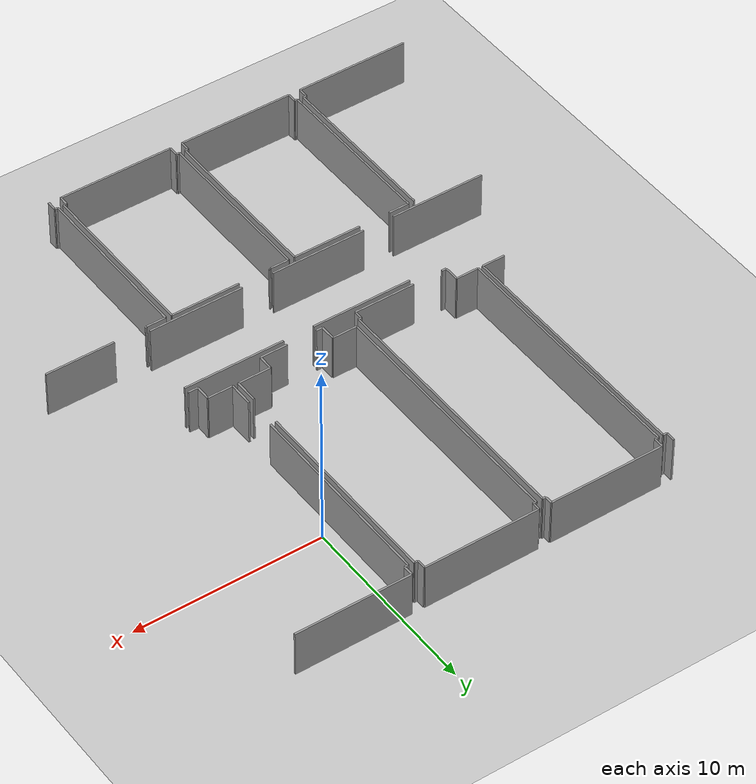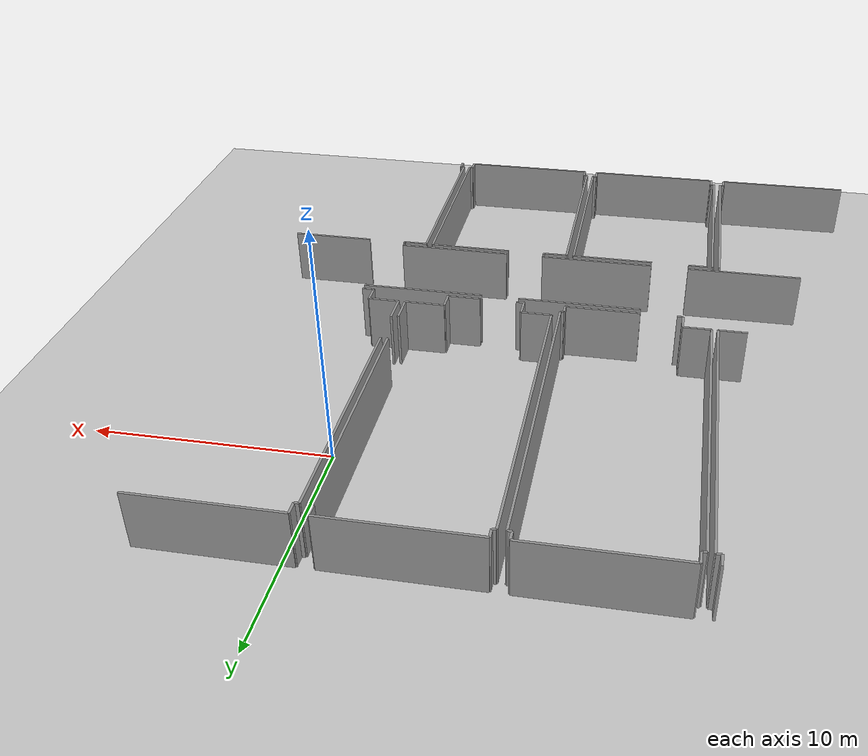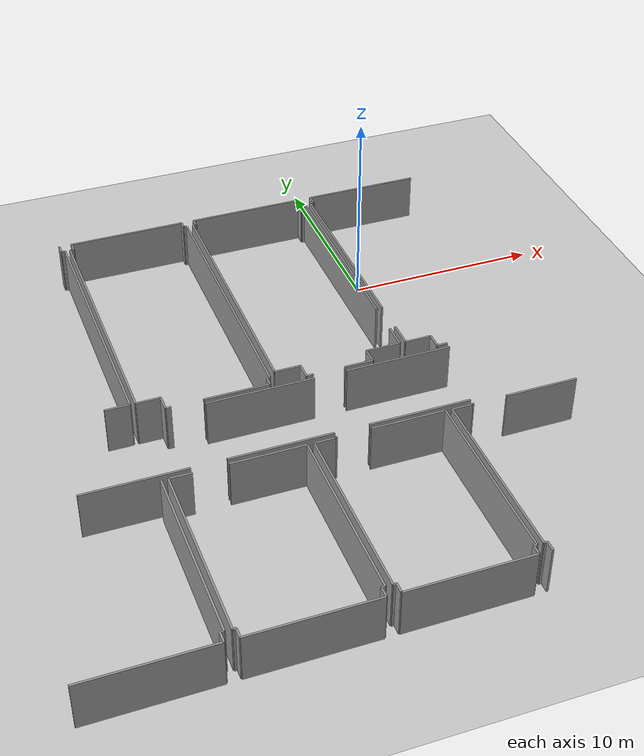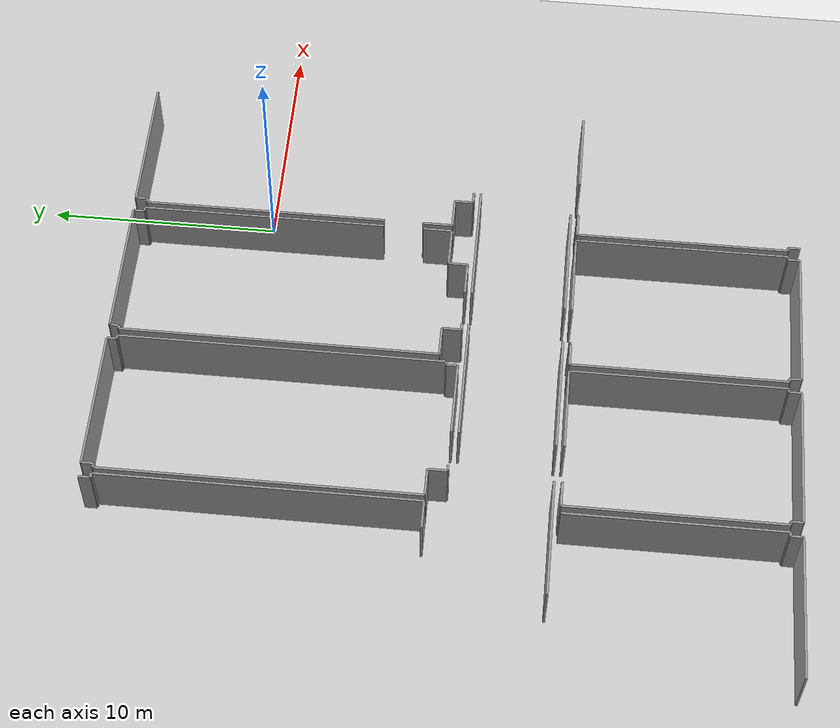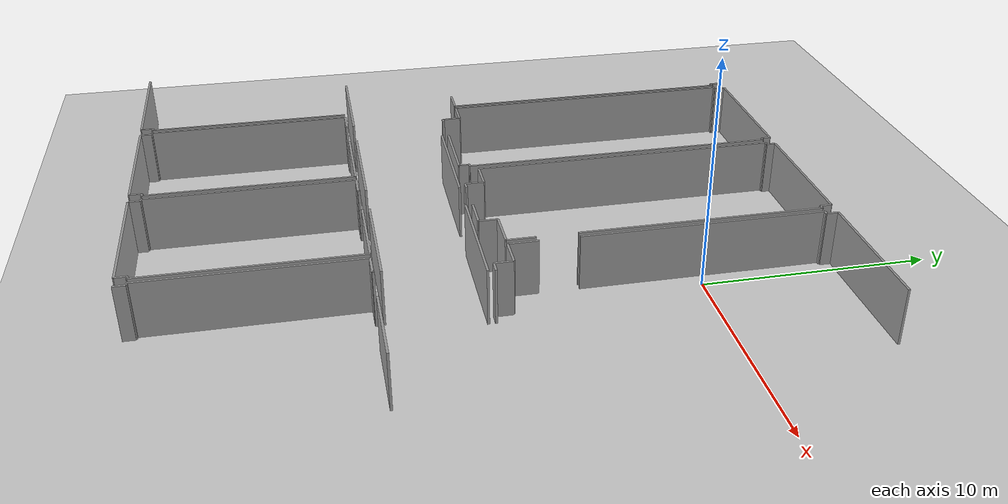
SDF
<sdf version="1.6">
 <world name="default">
  <model name="ground_plane">
   <static>1</static>
   <link name="link">
    <collision name="collision">
     <geometry><plane><normal>0 0 1</normal><size>100 100</size></plane></geometry>
     <surface><friction><ode><mu>100</mu><mu2>50</mu2></ode></friction></surface>
    </collision>
    <visual name="visual">
     <cast_shadows>0</cast_shadows>
     <geometry><plane><normal>0 0 1</normal><size>100 100</size></plane></geometry>
     <material>
      <script><uri>file://media/materials/scripts/gazebo.material</uri><name>Gazebo/Grey</name></script>
     </material>
    </visual>
   </link>
  </model>
  <model name="0510032192_A_40_1_203">
   <static>1</static>
   <link name="Wall_46">
    <collision name="Wall_46_Collision">
     <geometry><box><size>9.18871173753 0.1 2.5</size></box></geometry>
     <pose>4.59435586877 0 1.25 0 0 0</pose>
    </collision>
    <visual name="Wall_46_Visual">
     <pose>4.59435586877 0 1.25 0 0 0</pose>
     <geometry><box><size>9.18871173753 0.1 2.5</size></box></geometry>
     <material>
      <script><uri>file://media/materials/scripts/gazebo.material</uri><name>Gazebo/Grey</name></script>
      <ambient>1 1 1 1</ambient>
     </material>
    </visual>
    <pose>49.8577211232 -36.9945032948 0 0 0 -1.57079632679</pose>
   </link>
   <link name="Wall_47">
    <collision name="Wall_47_Collision">
     <geometry><box><size>0.176402930729 0.1 2.5</size></box></geometry>
     <pose>0.0882014653644 0 1.25 0 0 0</pose>
    </collision>
    <visual name="Wall_47_Visual">
     <pose>0.0882014653644 0 1.25 0 0 0</pose>
     <geometry><box><size>0.176402930729 0.1 2.5</size></box></geometry>
     <material>
      <script><uri>file://media/materials/scripts/gazebo.material</uri><name>Gazebo/Grey</name></script>
      <ambient>1 1 1 1</ambient>
     </material>
    </visual>
    <pose>49.8577211232 -46.1832150324 0 0 0 3.14159265359</pose>
   </link>
   <link name="Wall_48">
    <collision name="Wall_48_Collision">
     <geometry><box><size>0.531115163916 0.1 2.5</size></box></geometry>
     <pose>0.265557581958 0 1.25 0 0 0</pose>
    </collision>
    <visual name="Wall_48_Visual">
     <pose>0.265557581958 0 1.25 0 0 0</pose>
     <geometry><box><size>0.531115163916 0.1 2.5</size></box></geometry>
     <material>
      <script><uri>file://media/materials/scripts/gazebo.material</uri><name>Gazebo/Grey</name></script>
      <ambient>1 1 1 1</ambient>
     </material>
    </visual>
    <pose>49.6813181925 -46.1832150324 0 0 0 -1.57079632679</pose>
   </link>
   <link name="Wall_49">
    <collision name="Wall_49_Collision">
     <geometry><box><size>6.15875808017 0.1 2.5</size></box></geometry>
     <pose>3.07937904008 0 1.25 0 0 0</pose>
    </collision>
    <visual name="Wall_49_Visual">
     <pose>3.07937904008 0 1.25 0 0 0</pose>
     <geometry><box><size>6.15875808017 0.1 2.5</size></box></geometry>
     <material>
      <script><uri>file://media/materials/scripts/gazebo.material</uri><name>Gazebo/Grey</name></script>
      <ambient>1 1 1 1</ambient>
     </material>
    </visual>
    <pose>49.6813181925 -46.7143301963 0 0 0 -3.13829090534</pose>
   </link>
   <link name="Wall_50">
    <collision name="Wall_50_Collision">
     <geometry><box><size>0.511288897926 0.1 2.5</size></box></geometry>
     <pose>0.255644448963 0 1.25 0 0 0</pose>
    </collision>
    <visual name="Wall_50_Visual">
     <pose>0.255644448963 0 1.25 0 0 0</pose>
     <geometry><box><size>0.511288897926 0.1 2.5</size></box></geometry>
     <material>
      <script><uri>file://media/materials/scripts/gazebo.material</uri><name>Gazebo/Grey</name></script>
      <ambient>1 1 1 1</ambient>
     </material>
    </visual>
    <pose>50.338380982 -46.7143301963 0 0 0 1.57079632679</pose>
   </link>
   <link name="Wall_51">
    <collision name="Wall_51_Collision">
     <geometry><box><size>0.152891012728 0.1 2.5</size></box></geometry>
     <pose>0.0764455063641 0 1.25 0 0 0</pose>
    </collision>
    <visual name="Wall_51_Visual">
     <pose>0.0764455063641 0 1.25 0 0 0</pose>
     <geometry><box><size>0.152891012728 0.1 2.5</size></box></geometry>
     <material>
      <script><uri>file://media/materials/scripts/gazebo.material</uri><name>Gazebo/Grey</name></script>
      <ambient>1 1 1 1</ambient>
     </material>
    </visual>
    <pose>50.338380982 -46.2030412984 0 0 0 3.14159265359</pose>
   </link>
   <link name="Wall_52">
    <collision name="Wall_52_Collision">
     <geometry><box><size>9.20739418048 0.1 2.5</size></box></geometry>
     <pose>4.60369709024 0 1.25 0 0 0</pose>
    </collision>
    <visual name="Wall_52_Visual">
     <pose>4.60369709024 0 1.25 0 0 0</pose>
     <geometry><box><size>9.20739418048 0.1 2.5</size></box></geometry>
     <material>
      <script><uri>file://media/materials/scripts/gazebo.material</uri><name>Gazebo/Grey</name></script>
      <ambient>1 1 1 1</ambient>
     </material>
    </visual>
    <pose>50.1854899693 -46.2030412984 0 0 0 1.57079632679</pose>
   </link>
   <link name="Wall_53">
    <collision name="Wall_53_Collision">
     <geometry><box><size>1.10467887168 0.1 2.5</size></box></geometry>
     <pose>0.552339435841 0 1.25 0 0 0</pose>
    </collision>
    <visual name="Wall_53_Visual">
     <pose>0.552339435841 0 1.25 0 0 0</pose>
     <geometry><box><size>1.10467887168 0.1 2.5</size></box></geometry>
     <material>
      <script><uri>file://media/materials/scripts/gazebo.material</uri><name>Gazebo/Grey</name></script>
      <ambient>1 1 1 1</ambient>
     </material>
    </visual>
    <pose>50.1854899693 -36.9956471179 0 0 0 0.0</pose>
   </link>
   <link name="Wall_54">
    <collision name="Wall_54_Collision">
     <geometry><box><size>3.69010021161 0.1 2.5</size></box></geometry>
     <pose>1.8450501058 0 1.25 0 0 0</pose>
    </collision>
    <visual name="Wall_54_Visual">
     <pose>1.8450501058 0 1.25 0 0 0</pose>
     <geometry><box><size>3.69010021161 0.1 2.5</size></box></geometry>
     <material>
      <script><uri>file://media/materials/scripts/gazebo.material</uri><name>Gazebo/Grey</name></script>
      <ambient>1 1 1 1</ambient>
     </material>
    </visual>
    <pose>52.9898898753 -36.9956471179 0 0 0 0.0</pose>
   </link>
   <link name="Wall_55">
    <collision name="Wall_55_Collision">
     <geometry><box><size>9.18248425655 0.1 2.5</size></box></geometry>
     <pose>4.59124212827 0 1.25 0 0 0</pose>
    </collision>
    <visual name="Wall_55_Visual">
     <pose>4.59124212827 0 1.25 0 0 0</pose>
     <geometry><box><size>9.18248425655 0.1 2.5</size></box></geometry>
     <material>
      <script><uri>file://media/materials/scripts/gazebo.material</uri><name>Gazebo/Grey</name></script>
      <ambient>1 1 1 1</ambient>
     </material>
    </visual>
    <pose>56.6799900869 -36.9956471179 0 0 0 -1.57079632679</pose>
   </link>
   <link name="Wall_56">
    <collision name="Wall_56_Collision">
     <geometry><box><size>0.16966708395 0.1 2.5</size></box></geometry>
     <pose>0.0848335419751 0 1.25 0 0 0</pose>
    </collision>
    <visual name="Wall_56_Visual">
     <pose>0.0848335419751 0 1.25 0 0 0</pose>
     <geometry><box><size>0.16966708395 0.1 2.5</size></box></geometry>
     <material>
      <script><uri>file://media/materials/scripts/gazebo.material</uri><name>Gazebo/Grey</name></script>
      <ambient>1 1 1 1</ambient>
     </material>
    </visual>
    <pose>56.6799900869 -46.1781313744 0 0 0 3.14159265359</pose>
   </link>
   <link name="Wall_57">
    <collision name="Wall_57_Collision">
     <geometry><box><size>0.538232285041 0.1 2.5</size></box></geometry>
     <pose>0.26911614252 0 1.25 0 0 0</pose>
    </collision>
    <visual name="Wall_57_Visual">
     <pose>0.26911614252 0 1.25 0 0 0</pose>
     <geometry><box><size>0.538232285041 0.1 2.5</size></box></geometry>
     <material>
      <script><uri>file://media/materials/scripts/gazebo.material</uri><name>Gazebo/Grey</name></script>
      <ambient>1 1 1 1</ambient>
     </material>
    </visual>
    <pose>56.5103230029 -46.1781313744 0 0 0 -1.57079632679</pose>
   </link>
   <link name="Wall_58">
    <collision name="Wall_58_Collision">
     <geometry><box><size>6.17194235586 0.1 2.5</size></box></geometry>
     <pose>3.08597117793 0 1.25 0 0 0</pose>
    </collision>
    <visual name="Wall_58_Visual">
     <pose>3.08597117793 0 1.25 0 0 0</pose>
     <geometry><box><size>6.17194235586 0.1 2.5</size></box></geometry>
     <material>
      <script><uri>file://media/materials/scripts/gazebo.material</uri><name>Gazebo/Grey</name></script>
      <ambient>1 1 1 1</ambient>
     </material>
    </visual>
    <pose>56.5103230029 -46.7163636595 0 0 0 3.14126318466</pose>
   </link>
   <link name="Wall_59">
    <collision name="Wall_59_Collision">
     <geometry><box><size>0.515864190078 0.1 2.5</size></box></geometry>
     <pose>0.257932095039 0 1.25 0 0 0</pose>
    </collision>
    <visual name="Wall_59_Visual">
     <pose>0.257932095039 0 1.25 0 0 0</pose>
     <geometry><box><size>0.515864190078 0.1 2.5</size></box></geometry>
     <material>
      <script><uri>file://media/materials/scripts/gazebo.material</uri><name>Gazebo/Grey</name></script>
      <ambient>1 1 1 1</ambient>
     </material>
    </visual>
    <pose>57.1687837984 -46.7147114706 0 0 0 1.57079632679</pose>
   </link>
   <link name="Wall_60">
    <collision name="Wall_60_Collision">
     <geometry><box><size>0.159881042404 0.1 2.5</size></box></geometry>
     <pose>0.079940521202 0 1.25 0 0 0</pose>
    </collision>
    <visual name="Wall_60_Visual">
     <pose>0.079940521202 0 1.25 0 0 0</pose>
     <geometry><box><size>0.159881042404 0.1 2.5</size></box></geometry>
     <material>
      <script><uri>file://media/materials/scripts/gazebo.material</uri><name>Gazebo/Grey</name></script>
      <ambient>1 1 1 1</ambient>
     </material>
    </visual>
    <pose>57.1687837984 -46.1988472806 0 0 0 3.14159265359</pose>
   </link>
   <link name="Wall_61">
    <collision name="Wall_61_Collision">
     <geometry><box><size>9.19938741922 0.1 2.5</size></box></geometry>
     <pose>4.59969370961 0 1.25 0 0 0</pose>
    </collision>
    <visual name="Wall_61_Visual">
     <pose>4.59969370961 0 1.25 0 0 0</pose>
     <geometry><box><size>9.19938741922 0.1 2.5</size></box></geometry>
     <material>
      <script><uri>file://media/materials/scripts/gazebo.material</uri><name>Gazebo/Grey</name></script>
      <ambient>1 1 1 1</ambient>
     </material>
    </visual>
    <pose>57.008902756 -46.1988472806 0 0 0 1.57079632679</pose>
   </link>
   <link name="Wall_62">
    <collision name="Wall_62_Collision">
     <geometry><box><size>1.0318554716 0.1 2.5</size></box></geometry>
     <pose>0.515927735802 0 1.25 0 0 0</pose>
    </collision>
    <visual name="Wall_62_Visual">
     <pose>0.515927735802 0 1.25 0 0 0</pose>
     <geometry><box><size>1.0318554716 0.1 2.5</size></box></geometry>
     <material>
      <script><uri>file://media/materials/scripts/gazebo.material</uri><name>Gazebo/Grey</name></script>
      <ambient>1 1 1 1</ambient>
     </material>
    </visual>
    <pose>57.008902756 -36.9994598613 0 0 0 0.0</pose>
   </link>
   <link name="Wall_63">
    <collision name="Wall_63_Collision">
     <geometry><box><size>0.0363481543144 0.1 2.5</size></box></geometry>
     <pose>0.0181740771572 0 1.25 0 0 0</pose>
    </collision>
    <visual name="Wall_63_Visual">
     <pose>0.0181740771572 0 1.25 0 0 0</pose>
     <geometry><box><size>0.0363481543144 0.1 2.5</size></box></geometry>
     <material>
      <script><uri>file://media/materials/scripts/gazebo.material</uri><name>Gazebo/Grey</name></script>
      <ambient>1 1 1 1</ambient>
     </material>
    </visual>
    <pose>58.0407582276 -36.9994598613 0 0 0 1.57079632679</pose>
   </link>
   <link name="Wall_64">
    <collision name="Wall_64_Collision">
     <geometry><box><size>0.0944289463484 0.1 2.5</size></box></geometry>
     <pose>0.0472144731742 0 1.25 0 0 0</pose>
    </collision>
    <visual name="Wall_64_Visual">
     <pose>0.0472144731742 0 1.25 0 0 0</pose>
     <geometry><box><size>0.0944289463484 0.1 2.5</size></box></geometry>
     <material>
      <script><uri>file://media/materials/scripts/gazebo.material</uri><name>Gazebo/Grey</name></script>
      <ambient>1 1 1 1</ambient>
     </material>
    </visual>
    <pose>58.0407582276 -36.963111707 0 0 0 0.0</pose>
   </link>
   <link name="Wall_65">
    <collision name="Wall_65_Collision">
     <geometry><box><size>3.71755196452 0.1 2.5</size></box></geometry>
     <pose>1.85877598226 0 1.25 0 0 0</pose>
    </collision>
    <visual name="Wall_65_Visual">
     <pose>1.85877598226 0 1.25 0 0 0</pose>
     <geometry><box><size>3.71755196452 0.1 2.5</size></box></geometry>
     <material>
      <script><uri>file://media/materials/scripts/gazebo.material</uri><name>Gazebo/Grey</name></script>
      <ambient>1 1 1 1</ambient>
     </material>
    </visual>
    <pose>59.7970349565 -36.963111707 0 0 0 0.0</pose>
   </link>
   <link name="Wall_66">
    <collision name="Wall_66_Collision">
     <geometry><box><size>9.23675230512 0.1 2.5</size></box></geometry>
     <pose>4.61837615256 0 1.25 0 0 0</pose>
    </collision>
    <visual name="Wall_66_Visual">
     <pose>4.61837615256 0 1.25 0 0 0</pose>
     <geometry><box><size>9.23675230512 0.1 2.5</size></box></geometry>
     <material>
      <script><uri>file://media/materials/scripts/gazebo.material</uri><name>Gazebo/Grey</name></script>
      <ambient>1 1 1 1</ambient>
     </material>
    </visual>
    <pose>63.514586921 -36.963111707 0 0 0 -1.57079632679</pose>
   </link>
   <link name="Wall_67">
    <collision name="Wall_67_Collision">
     <geometry><box><size>0.162041597031 0.1 2.5</size></box></geometry>
     <pose>0.0810207985156 0 1.25 0 0 0</pose>
    </collision>
    <visual name="Wall_67_Visual">
     <pose>0.0810207985156 0 1.25 0 0 0</pose>
     <geometry><box><size>0.162041597031 0.1 2.5</size></box></geometry>
     <material>
      <script><uri>file://media/materials/scripts/gazebo.material</uri><name>Gazebo/Grey</name></script>
      <ambient>1 1 1 1</ambient>
     </material>
    </visual>
    <pose>63.514586921 -46.1998640121 0 0 0 3.14159265359</pose>
   </link>
   <link name="Wall_68">
    <collision name="Wall_68_Collision">
     <geometry><box><size>0.509763800543 0.1 2.5</size></box></geometry>
     <pose>0.254881900271 0 1.25 0 0 0</pose>
    </collision>
    <visual name="Wall_68_Visual">
     <pose>0.254881900271 0 1.25 0 0 0</pose>
     <geometry><box><size>0.509763800543 0.1 2.5</size></box></geometry>
     <material>
      <script><uri>file://media/materials/scripts/gazebo.material</uri><name>Gazebo/Grey</name></script>
      <ambient>1 1 1 1</ambient>
     </material>
    </visual>
    <pose>63.352545324 -46.1998640121 0 0 0 -1.57079632679</pose>
   </link>
   <link name="Wall_69">
    <collision name="Wall_69_Collision">
     <geometry><box><size>6.18376361524 0.1 2.5</size></box></geometry>
     <pose>3.09188180762 0 1.25 0 0 0</pose>
    </collision>
    <visual name="Wall_69_Visual">
     <pose>3.09188180762 0 1.25 0 0 0</pose>
     <geometry><box><size>6.18376361524 0.1 2.5</size></box></geometry>
     <material>
      <script><uri>file://media/materials/scripts/gazebo.material</uri><name>Gazebo/Grey</name></script>
      <ambient>1 1 1 1</ambient>
     </material>
    </visual>
    <pose>63.352545324 -46.7096278127 0 0 0 -3.14077055578</pose>
   </link>
   <link name="Wall_70">
    <collision name="Wall_70_Collision">
     <geometry><box><size>0.530352615224 0.1 2.5</size></box></geometry>
     <pose>0.265176307612 0 1.25 0 0 0</pose>
    </collision>
    <visual name="Wall_70_Visual">
     <pose>0.265176307612 0 1.25 0 0 0</pose>
     <geometry><box><size>0.530352615224 0.1 2.5</size></box></geometry>
     <material>
      <script><uri>file://media/materials/scripts/gazebo.material</uri><name>Gazebo/Grey</name></script>
      <ambient>1 1 1 1</ambient>
     </material>
    </visual>
    <pose>63.9934674995 -46.72869153 0 0 0 1.57079632679</pose>
   </link>
   <link name="Wall_71">
    <collision name="Wall_71_Collision">
     <geometry><box><size>0.162422871377 0.1 2.5</size></box></geometry>
     <pose>0.0812114356886 0 1.25 0 0 0</pose>
    </collision>
    <visual name="Wall_71_Visual">
     <pose>0.0812114356886 0 1.25 0 0 0</pose>
     <geometry><box><size>0.162422871377 0.1 2.5</size></box></geometry>
     <material>
      <script><uri>file://media/materials/scripts/gazebo.material</uri><name>Gazebo/Grey</name></script>
      <ambient>1 1 1 1</ambient>
     </material>
    </visual>
    <pose>63.9934674995 -46.1983389148 0 0 0 3.14159265359</pose>
   </link>
   <link name="Wall_72">
    <collision name="Wall_72_Collision">
     <geometry><box><size>9.20256470543 0.1 2.5</size></box></geometry>
     <pose>4.60128235272 0 1.25 0 0 0</pose>
    </collision>
    <visual name="Wall_72_Visual">
     <pose>4.60128235272 0 1.25 0 0 0</pose>
     <geometry><box><size>9.20256470543 0.1 2.5</size></box></geometry>
     <material>
      <script><uri>file://media/materials/scripts/gazebo.material</uri><name>Gazebo/Grey</name></script>
      <ambient>1 1 1 1</ambient>
     </material>
    </visual>
    <pose>63.8310446282 -46.1983389148 0 0 0 1.57079632679</pose>
   </link>
   <link name="Wall_73">
    <collision name="Wall_73_Collision">
     <geometry><box><size>1.04418334212 0.1 2.5</size></box></geometry>
     <pose>0.522091671062 0 1.25 0 0 0</pose>
    </collision>
    <visual name="Wall_73_Visual">
     <pose>0.522091671062 0 1.25 0 0 0</pose>
     <geometry><box><size>1.04418334212 0.1 2.5</size></box></geometry>
     <material>
      <script><uri>file://media/materials/scripts/gazebo.material</uri><name>Gazebo/Grey</name></script>
      <ambient>1 1 1 1</ambient>
     </material>
    </visual>
    <pose>63.8310446282 -36.9957742093 0 0 0 0.0</pose>
   </link>
   <link name="Wall_74">
    <collision name="Wall_74_Collision">
     <geometry><box><size>0.0249099239358 0.1 2.5</size></box></geometry>
     <pose>0.0124549619679 0 1.25 0 0 0</pose>
    </collision>
    <visual name="Wall_74_Visual">
     <pose>0.0124549619679 0 1.25 0 0 0</pose>
     <geometry><box><size>0.0249099239358 0.1 2.5</size></box></geometry>
     <material>
      <script><uri>file://media/materials/scripts/gazebo.material</uri><name>Gazebo/Grey</name></script>
      <ambient>1 1 1 1</ambient>
     </material>
    </visual>
    <pose>64.8752279703 -36.9957742093 0 0 0 1.57079632679</pose>
   </link>
   <link name="Wall_75">
    <collision name="Wall_75_Collision">
     <geometry><box><size>0.074856863256 0.1 2.5</size></box></geometry>
     <pose>0.037428431628 0 1.25 0 0 0</pose>
    </collision>
    <visual name="Wall_75_Visual">
     <pose>0.037428431628 0 1.25 0 0 0</pose>
     <geometry><box><size>0.074856863256 0.1 2.5</size></box></geometry>
     <material>
      <script><uri>file://media/materials/scripts/gazebo.material</uri><name>Gazebo/Grey</name></script>
      <ambient>1 1 1 1</ambient>
     </material>
    </visual>
    <pose>64.8752279703 -36.9708642854 0 0 0 0.0</pose>
   </link>
   <link name="Wall_76">
    <collision name="Wall_76_Collision">
     <geometry><box><size>3.68933766292 0.1 2.5</size></box></geometry>
     <pose>1.84466883146 0 1.25 0 0 0</pose>
    </collision>
    <visual name="Wall_76_Visual">
     <pose>1.84466883146 0 1.25 0 0 0</pose>
     <geometry><box><size>3.68933766292 0.1 2.5</size></box></geometry>
     <material>
      <script><uri>file://media/materials/scripts/gazebo.material</uri><name>Gazebo/Grey</name></script>
      <ambient>1 1 1 1</ambient>
     </material>
    </visual>
    <pose>66.6326485222 -36.9708642854 0 0 0 0.0</pose>
   </link>
   <link name="Wall_224">
    <collision name="Wall_224_Collision">
     <geometry><box><size>5.41498535271 0.1 2.5</size></box></geometry>
     <pose>2.70749267636 0 1.25 0 0 0</pose>
    </collision>
    <visual name="Wall_224_Visual">
     <pose>2.70749267636 0 1.25 0 0 0</pose>
     <geometry><box><size>5.41498535271 0.1 2.5</size></box></geometry>
     <material>
      <script><uri>file://media/materials/scripts/gazebo.material</uri><name>Gazebo/Grey</name></script>
      <ambient>1 1 1 1</ambient>
     </material>
    </visual>
    <pose>53.2245006895 -32.6294203994 0 0 0 0.0</pose>
   </link>
   <link name="Wall_225">
    <collision name="Wall_225_Collision">
     <geometry><box><size>5.39935310453 0.1 2.5</size></box></geometry>
     <pose>2.69967655226 0 1.25 0 0 0</pose>
    </collision>
    <visual name="Wall_225_Visual">
     <pose>2.69967655226 0 1.25 0 0 0</pose>
     <geometry><box><size>5.39935310453 0.1 2.5</size></box></geometry>
     <material>
      <script><uri>file://media/materials/scripts/gazebo.material</uri><name>Gazebo/Grey</name></script>
      <ambient>1 1 1 1</ambient>
     </material>
    </visual>
    <pose>60.2788386383 -32.6294203994 0 0 0 0.0</pose>
   </link>
   <link name="Wall_243">
    <collision name="Wall_243_Collision">
     <geometry><box><size>5.08365794608 0.1 2.5</size></box></geometry>
     <pose>2.54182897304 0 1.25 0 0 0</pose>
    </collision>
    <visual name="Wall_243_Visual">
     <pose>2.54182897304 0 1.25 0 0 0</pose>
     <geometry><box><size>5.08365794608 0.1 2.5</size></box></geometry>
     <material>
      <script><uri>file://media/materials/scripts/gazebo.material</uri><name>Gazebo/Grey</name></script>
      <ambient>1 1 1 1</ambient>
     </material>
    </visual>
    <pose>64.9189474286 -36.6643197112 0 0 0 3.14159265359</pose>
   </link>
   <link name="Wall_244">
    <collision name="Wall_244_Collision">
     <geometry><box><size>5.13449452554 0.1 2.5</size></box></geometry>
     <pose>2.56724726277 0 1.25 0 0 0</pose>
    </collision>
    <visual name="Wall_244_Visual">
     <pose>2.56724726277 0 1.25 0 0 0</pose>
     <geometry><box><size>5.13449452554 0.1 2.5</size></box></geometry>
     <material>
      <script><uri>file://media/materials/scripts/gazebo.material</uri><name>Gazebo/Grey</name></script>
      <ambient>1 1 1 1</ambient>
     </material>
    </visual>
    <pose>58.1271804127 -36.6643197112 0 0 0 3.14159265359</pose>
   </link>
   <link name="Wall_245">
    <collision name="Wall_245_Collision">
     <geometry><box><size>5.11784554576 0.1 2.5</size></box></geometry>
     <pose>2.55892277288 0 1.25 0 0 0</pose>
    </collision>
    <visual name="Wall_245_Visual">
     <pose>2.55892277288 0 1.25 0 0 0</pose>
     <geometry><box><size>5.11784554576 0.1 2.5</size></box></geometry>
     <material>
      <script><uri>file://media/materials/scripts/gazebo.material</uri><name>Gazebo/Grey</name></script>
      <ambient>1 1 1 1</ambient>
     </material>
    </visual>
    <pose>51.2974130536 -36.6643197112 0 0 0 3.14159265359</pose>
   </link>
   <link name="Wall_285">
    <collision name="Wall_285_Collision">
     <geometry><box><size>0.519804024986 0.1 2.5</size></box></geometry>
     <pose>0.259902012493 0 1.25 0 0 0</pose>
    </collision>
    <visual name="Wall_285_Visual">
     <pose>0.259902012493 0 1.25 0 0 0</pose>
     <geometry><box><size>0.519804024986 0.1 2.5</size></box></geometry>
     <material>
      <script><uri>file://media/materials/scripts/gazebo.material</uri><name>Gazebo/Grey</name></script>
      <ambient>1 1 1 1</ambient>
     </material>
    </visual>
    <pose>49.6883082222 -17.3868345968 0 0 0 -1.57079632679</pose>
   </link>
   <link name="Wall_286">
    <collision name="Wall_286_Collision">
     <geometry><box><size>0.203346317843 0.1 2.5</size></box></geometry>
     <pose>0.101673158922 0 1.25 0 0 0</pose>
    </collision>
    <visual name="Wall_286_Visual">
     <pose>0.101673158922 0 1.25 0 0 0</pose>
     <geometry><box><size>0.203346317843 0.1 2.5</size></box></geometry>
     <material>
      <script><uri>file://media/materials/scripts/gazebo.material</uri><name>Gazebo/Grey</name></script>
      <ambient>1 1 1 1</ambient>
     </material>
    </visual>
    <pose>49.6883082222 -17.9066386218 0 0 0 0.0</pose>
   </link>
   <link name="Wall_287">
    <collision name="Wall_287_Collision">
     <geometry><box><size>13.5876009583 0.1 2.5</size></box></geometry>
     <pose>6.79380047913 0 1.25 0 0 0</pose>
    </collision>
    <visual name="Wall_287_Visual">
     <pose>6.79380047913 0 1.25 0 0 0</pose>
     <geometry><box><size>13.5876009583 0.1 2.5</size></box></geometry>
     <material>
      <script><uri>file://media/materials/scripts/gazebo.material</uri><name>Gazebo/Grey</name></script>
      <ambient>1 1 1 1</ambient>
     </material>
    </visual>
    <pose>49.89165454 -17.9066386218 0 0 0 -1.57079632679</pose>
   </link>
   <link name="Wall_288">
    <collision name="Wall_288_Collision">
     <geometry><box><size>1.23265996047 0.1 2.5</size></box></geometry>
     <pose>0.616329980237 0 1.25 0 0 0</pose>
    </collision>
    <visual name="Wall_288_Visual">
     <pose>0.616329980237 0 1.25 0 0 0</pose>
     <geometry><box><size>1.23265996047 0.1 2.5</size></box></geometry>
     <material>
      <script><uri>file://media/materials/scripts/gazebo.material</uri><name>Gazebo/Grey</name></script>
      <ambient>1 1 1 1</ambient>
     </material>
    </visual>
    <pose>49.89165454 -31.4942395801 0 0 0 3.14159265359</pose>
   </link>
   <link name="Wall_292">
    <collision name="Wall_292_Collision">
     <geometry><box><size>0.826348599135 0.1 2.5</size></box></geometry>
     <pose>0.413174299567 0 1.25 0 0 0</pose>
    </collision>
    <visual name="Wall_292_Visual">
     <pose>0.413174299567 0 1.25 0 0 0</pose>
     <geometry><box><size>0.826348599135 0.1 2.5</size></box></geometry>
     <material>
      <script><uri>file://media/materials/scripts/gazebo.material</uri><name>Gazebo/Grey</name></script>
      <ambient>1 1 1 1</ambient>
     </material>
    </visual>
    <pose>51.3784973978 -32.3205881792 0 0 0 1.57079632679</pose>
   </link>
   <link name="Wall_293">
    <collision name="Wall_293_Collision">
     <geometry><box><size>1.2204591814 0.1 2.5</size></box></geometry>
     <pose>0.610229590702 0 1.25 0 0 0</pose>
    </collision>
    <visual name="Wall_293_Visual">
     <pose>0.610229590702 0 1.25 0 0 0</pose>
     <geometry><box><size>1.2204591814 0.1 2.5</size></box></geometry>
     <material>
      <script><uri>file://media/materials/scripts/gazebo.material</uri><name>Gazebo/Grey</name></script>
      <ambient>1 1 1 1</ambient>
     </material>
    </visual>
    <pose>51.3784973978 -31.4942395801 0 0 0 3.14159265359</pose>
   </link>
   <link name="Wall_294">
    <collision name="Wall_294_Collision">
     <geometry><box><size>13.5726041673 0.1 2.5</size></box></geometry>
     <pose>6.78630208366 0 1.25 0 0 0</pose>
    </collision>
    <visual name="Wall_294_Visual">
     <pose>6.78630208366 0 1.25 0 0 0</pose>
     <geometry><box><size>13.5726041673 0.1 2.5</size></box></geometry>
     <material>
      <script><uri>file://media/materials/scripts/gazebo.material</uri><name>Gazebo/Grey</name></script>
      <ambient>1 1 1 1</ambient>
     </material>
    </visual>
    <pose>50.1580382164 -31.4942395801 0 0 0 1.57079632679</pose>
   </link>
   <link name="Wall_295">
    <collision name="Wall_295_Collision">
     <geometry><box><size>0.191780996016 0.1 2.5</size></box></geometry>
     <pose>0.0958904980078 0 1.25 0 0 0</pose>
    </collision>
    <visual name="Wall_295_Visual">
     <pose>0.0958904980078 0 1.25 0 0 0</pose>
     <geometry><box><size>0.191780996016 0.1 2.5</size></box></geometry>
     <material>
      <script><uri>file://media/materials/scripts/gazebo.material</uri><name>Gazebo/Grey</name></script>
      <ambient>1 1 1 1</ambient>
     </material>
    </visual>
    <pose>50.1580382164 -17.9216354128 0 0 0 0.0</pose>
   </link>
   <link name="Wall_296">
    <collision name="Wall_296_Collision">
     <geometry><box><size>0.526539871765 0.1 2.5</size></box></geometry>
     <pose>0.263269935882 0 1.25 0 0 0</pose>
    </collision>
    <visual name="Wall_296_Visual">
     <pose>0.263269935882 0 1.25 0 0 0</pose>
     <geometry><box><size>0.526539871765 0.1 2.5</size></box></geometry>
     <material>
      <script><uri>file://media/materials/scripts/gazebo.material</uri><name>Gazebo/Grey</name></script>
      <ambient>1 1 1 1</ambient>
     </material>
    </visual>
    <pose>50.3498192124 -17.9216354128 0 0 0 1.57079632679</pose>
   </link>
   <link name="Wall_297">
    <collision name="Wall_297_Collision">
     <geometry><box><size>6.14118589031 0.1 2.5</size></box></geometry>
     <pose>3.07059294515 0 1.25 0 0 0</pose>
    </collision>
    <visual name="Wall_297_Visual">
     <pose>3.07059294515 0 1.25 0 0 0</pose>
     <geometry><box><size>6.14118589031 0.1 2.5</size></box></geometry>
     <material>
      <script><uri>file://media/materials/scripts/gazebo.material</uri><name>Gazebo/Grey</name></script>
      <ambient>1 1 1 1</ambient>
     </material>
    </visual>
    <pose>50.3498192124 -17.395095541 0 0 0 0.0</pose>
   </link>
   <link name="Wall_298">
    <collision name="Wall_298_Collision">
     <geometry><box><size>0.414572305502 0.1 2.5</size></box></geometry>
     <pose>0.207286152751 0 1.25 0 0 0</pose>
    </collision>
    <visual name="Wall_298_Visual">
     <pose>0.207286152751 0 1.25 0 0 0</pose>
     <geometry><box><size>0.414572305502 0.1 2.5</size></box></geometry>
     <material>
      <script><uri>file://media/materials/scripts/gazebo.material</uri><name>Gazebo/Grey</name></script>
      <ambient>1 1 1 1</ambient>
     </material>
    </visual>
    <pose>56.4910051027 -17.395095541 0 0 0 -1.57079632679</pose>
   </link>
   <link name="Wall_299">
    <collision name="Wall_299_Collision">
     <geometry><box><size>0.172971461615 0.1 2.5</size></box></geometry>
     <pose>0.0864857308076 0 1.25 0 0 0</pose>
    </collision>
    <visual name="Wall_299_Visual">
     <pose>0.0864857308076 0 1.25 0 0 0</pose>
     <geometry><box><size>0.172971461615 0.1 2.5</size></box></geometry>
     <material>
      <script><uri>file://media/materials/scripts/gazebo.material</uri><name>Gazebo/Grey</name></script>
      <ambient>1 1 1 1</ambient>
     </material>
    </visual>
    <pose>56.4910051027 -17.8096678465 0 0 0 0.0</pose>
   </link>
   <link name="Wall_300">
    <collision name="Wall_300_Collision">
     <geometry><box><size>14.0305146568 0.1 2.5</size></box></geometry>
     <pose>7.01525732841 0 1.25 0 0 0</pose>
    </collision>
    <visual name="Wall_300_Visual">
     <pose>7.01525732841 0 1.25 0 0 0</pose>
     <geometry><box><size>14.0305146568 0.1 2.5</size></box></geometry>
     <material>
      <script><uri>file://media/materials/scripts/gazebo.material</uri><name>Gazebo/Grey</name></script>
      <ambient>1 1 1 1</ambient>
     </material>
    </visual>
    <pose>56.6639765643 -17.8096678465 0 0 0 -1.57079632679</pose>
   </link>
   <link name="Wall_301">
    <collision name="Wall_301_Collision">
     <geometry><box><size>0.15644957329 0.1 2.5</size></box></geometry>
     <pose>0.0782247866452 0 1.25 0 0 0</pose>
    </collision>
    <visual name="Wall_301_Visual">
     <pose>0.0782247866452 0 1.25 0 0 0</pose>
     <geometry><box><size>0.15644957329 0.1 2.5</size></box></geometry>
     <material>
      <script><uri>file://media/materials/scripts/gazebo.material</uri><name>Gazebo/Grey</name></script>
      <ambient>1 1 1 1</ambient>
     </material>
    </visual>
    <pose>56.6639765643 -31.8401825033 0 0 0 3.14159265359</pose>
   </link>
   <link name="Wall_302">
    <collision name="Wall_302_Collision">
     <geometry><box><size>0.479643127212 0.1 2.5</size></box></geometry>
     <pose>0.239821563606 0 1.25 0 0 0</pose>
    </collision>
    <visual name="Wall_302_Visual">
     <pose>0.239821563606 0 1.25 0 0 0</pose>
     <geometry><box><size>0.479643127212 0.1 2.5</size></box></geometry>
     <material>
      <script><uri>file://media/materials/scripts/gazebo.material</uri><name>Gazebo/Grey</name></script>
      <ambient>1 1 1 1</ambient>
     </material>
    </visual>
    <pose>56.507526991 -31.8401825033 0 0 0 -1.57079632679</pose>
   </link>
   <link name="Wall_303">
    <collision name="Wall_303_Collision">
     <geometry><box><size>3.28162829564 0.1 2.5</size></box></geometry>
     <pose>1.64081414782 0 1.25 0 0 0</pose>
    </collision>
    <visual name="Wall_303_Visual">
     <pose>1.64081414782 0 1.25 0 0 0</pose>
     <geometry><box><size>3.28162829564 0.1 2.5</size></box></geometry>
     <material>
      <script><uri>file://media/materials/scripts/gazebo.material</uri><name>Gazebo/Grey</name></script>
      <ambient>1 1 1 1</ambient>
     </material>
    </visual>
    <pose>56.507526991 -32.3198256305 0 0 0 3.14159265359</pose>
   </link>
   <link name="Wall_304">
    <collision name="Wall_304_Collision">
     <geometry><box><size>0.265495131323 0.1 2.5</size></box></geometry>
     <pose>0.132747565661 0 1.25 0 0 0</pose>
    </collision>
    <visual name="Wall_304_Visual">
     <pose>0.132747565661 0 1.25 0 0 0</pose>
     <geometry><box><size>0.265495131323 0.1 2.5</size></box></geometry>
     <material>
      <script><uri>file://media/materials/scripts/gazebo.material</uri><name>Gazebo/Grey</name></script>
      <ambient>1 1 1 1</ambient>
     </material>
    </visual>
    <pose>51.643991434 -32.3198256305 0 0 0 -3.13872047384</pose>
   </link>
   <link name="Wall_305">
    <collision name="Wall_305_Collision">
     <geometry><box><size>0.836134640681 0.1 2.5</size></box></geometry>
     <pose>0.41806732034 0 1.25 0 0 0</pose>
    </collision>
    <visual name="Wall_305_Visual">
     <pose>0.41806732034 0 1.25 0 0 0</pose>
     <geometry><box><size>0.836134640681 0.1 2.5</size></box></geometry>
     <material>
      <script><uri>file://media/materials/scripts/gazebo.material</uri><name>Gazebo/Grey</name></script>
      <ambient>1 1 1 1</ambient>
     </material>
    </visual>
    <pose>58.3361187542 -32.3399060794 0 0 0 1.57079632679</pose>
   </link>
   <link name="Wall_306">
    <collision name="Wall_306_Collision">
     <geometry><box><size>1.32619926668 0.1 2.5</size></box></geometry>
     <pose>0.663099633341 0 1.25 0 0 0</pose>
    </collision>
    <visual name="Wall_306_Visual">
     <pose>0.663099633341 0 1.25 0 0 0</pose>
     <geometry><box><size>1.32619926668 0.1 2.5</size></box></geometry>
     <material>
      <script><uri>file://media/materials/scripts/gazebo.material</uri><name>Gazebo/Grey</name></script>
      <ambient>1 1 1 1</ambient>
     </material>
    </visual>
    <pose>58.3361187542 -31.5037714387 0 0 0 3.14159265359</pose>
   </link>
   <link name="Wall_307">
    <collision name="Wall_307_Collision">
     <geometry><box><size>13.6941035922 0.1 2.5</size></box></geometry>
     <pose>6.84705179612 0 1.25 0 0 0</pose>
    </collision>
    <visual name="Wall_307_Visual">
     <pose>6.84705179612 0 1.25 0 0 0</pose>
     <geometry><box><size>13.6941035922 0.1 2.5</size></box></geometry>
     <material>
      <script><uri>file://media/materials/scripts/gazebo.material</uri><name>Gazebo/Grey</name></script>
      <ambient>1 1 1 1</ambient>
     </material>
    </visual>
    <pose>57.0099194876 -31.5037714387 0 0 0 1.57079632679</pose>
   </link>
   <link name="Wall_308">
    <collision name="Wall_308_Collision">
     <geometry><box><size>0.163439602966 0.1 2.5</size></box></geometry>
     <pose>0.0817198014832 0 1.25 0 0 0</pose>
    </collision>
    <visual name="Wall_308_Visual">
     <pose>0.0817198014832 0 1.25 0 0 0</pose>
     <geometry><box><size>0.163439602966 0.1 2.5</size></box></geometry>
     <material>
      <script><uri>file://media/materials/scripts/gazebo.material</uri><name>Gazebo/Grey</name></script>
      <ambient>1 1 1 1</ambient>
     </material>
    </visual>
    <pose>57.0099194876 -17.8096678465 0 0 0 0.0</pose>
   </link>
   <link name="Wall_309">
    <collision name="Wall_309_Collision">
     <geometry><box><size>0.413301391016 0.1 2.5</size></box></geometry>
     <pose>0.206650695508 0 1.25 0 0 0</pose>
    </collision>
    <visual name="Wall_309_Visual">
     <pose>0.206650695508 0 1.25 0 0 0</pose>
     <geometry><box><size>0.413301391016 0.1 2.5</size></box></geometry>
     <material>
      <script><uri>file://media/materials/scripts/gazebo.material</uri><name>Gazebo/Grey</name></script>
      <ambient>1 1 1 1</ambient>
     </material>
    </visual>
    <pose>57.1733590905 -17.8096678465 0 0 0 1.57079632679</pose>
   </link>
   <link name="Wall_310">
    <collision name="Wall_310_Collision">
     <geometry><box><size>6.14804882853 0.1 2.5</size></box></geometry>
     <pose>3.07402441427 0 1.25 0 0 0</pose>
    </collision>
    <visual name="Wall_310_Visual">
     <pose>3.07402441427 0 1.25 0 0 0</pose>
     <geometry><box><size>6.14804882853 0.1 2.5</size></box></geometry>
     <material>
      <script><uri>file://media/materials/scripts/gazebo.material</uri><name>Gazebo/Grey</name></script>
      <ambient>1 1 1 1</ambient>
     </material>
    </visual>
    <pose>57.1733590905 -17.3963664555 0 0 0 0.0</pose>
   </link>
   <link name="Wall_311">
    <collision name="Wall_311_Collision">
     <geometry><box><size>0.492225180629 0.1 2.5</size></box></geometry>
     <pose>0.246112590314 0 1.25 0 0 0</pose>
    </collision>
    <visual name="Wall_311_Visual">
     <pose>0.246112590314 0 1.25 0 0 0</pose>
     <geometry><box><size>0.492225180629 0.1 2.5</size></box></geometry>
     <material>
      <script><uri>file://media/materials/scripts/gazebo.material</uri><name>Gazebo/Grey</name></script>
      <ambient>1 1 1 1</ambient>
     </material>
    </visual>
    <pose>63.3214079191 -17.3963664555 0 0 0 -1.57079632679</pose>
   </link>
   <link name="Wall_312">
    <collision name="Wall_312_Collision">
     <geometry><box><size>0.198262659897 0.1 2.5</size></box></geometry>
     <pose>0.0991313299485 0 1.25 0 0 0</pose>
    </collision>
    <visual name="Wall_312_Visual">
     <pose>0.0991313299485 0 1.25 0 0 0</pose>
     <geometry><box><size>0.198262659897 0.1 2.5</size></box></geometry>
     <material>
      <script><uri>file://media/materials/scripts/gazebo.material</uri><name>Gazebo/Grey</name></script>
      <ambient>1 1 1 1</ambient>
     </material>
    </visual>
    <pose>63.3214079191 -17.8885916361 0 0 0 0.0</pose>
   </link>
   <link name="Wall_313">
    <collision name="Wall_313_Collision">
     <geometry><box><size>10.6090857677 0.1 2.5</size></box></geometry>
     <pose>5.30454288383 0 1.25 0 0 0</pose>
    </collision>
    <visual name="Wall_313_Visual">
     <pose>5.30454288383 0 1.25 0 0 0</pose>
     <geometry><box><size>10.6090857677 0.1 2.5</size></box></geometry>
     <material>
      <script><uri>file://media/materials/scripts/gazebo.material</uri><name>Gazebo/Grey</name></script>
      <ambient>1 1 1 1</ambient>
     </material>
    </visual>
    <pose>63.519670579 -17.8885916361 0 0 0 -1.57079632679</pose>
   </link>
   <link name="Wall_314">
    <collision name="Wall_314_Collision">
     <geometry><box><size>1.24880057445 0.1 2.5</size></box></geometry>
     <pose>0.624400287227 0 1.25 0 0 0</pose>
    </collision>
    <visual name="Wall_314_Visual">
     <pose>0.624400287227 0 1.25 0 0 0</pose>
     <geometry><box><size>1.24880057445 0.1 2.5</size></box></geometry>
     <material>
      <script><uri>file://media/materials/scripts/gazebo.material</uri><name>Gazebo/Grey</name></script>
      <ambient>1 1 1 1</ambient>
     </material>
    </visual>
    <pose>63.519670579 -30.2587836077 0 0 0 -1.57079632679</pose>
   </link>
   <link name="Wall_315">
    <collision name="Wall_315_Collision">
     <geometry><box><size>1.76428349019 0.1 2.5</size></box></geometry>
     <pose>0.882141745093 0 1.25 0 0 0</pose>
    </collision>
    <visual name="Wall_315_Visual">
     <pose>0.882141745093 0 1.25 0 0 0</pose>
     <geometry><box><size>1.76428349019 0.1 2.5</size></box></geometry>
     <material>
      <script><uri>file://media/materials/scripts/gazebo.material</uri><name>Gazebo/Grey</name></script>
      <ambient>1 1 1 1</ambient>
     </material>
    </visual>
    <pose>63.519670579 -31.5075841822 0 0 0 3.14159265359</pose>
   </link>
   <link name="Wall_316">
    <collision name="Wall_316_Collision">
     <geometry><box><size>0.819485660907 0.1 2.5</size></box></geometry>
     <pose>0.409742830454 0 1.25 0 0 0</pose>
    </collision>
    <visual name="Wall_316_Visual">
     <pose>0.409742830454 0 1.25 0 0 0</pose>
     <geometry><box><size>0.819485660907 0.1 2.5</size></box></geometry>
     <material>
      <script><uri>file://media/materials/scripts/gazebo.material</uri><name>Gazebo/Grey</name></script>
      <ambient>1 1 1 1</ambient>
     </material>
    </visual>
    <pose>61.7553870888 -31.5075841822 0 0 0 -1.57079632679</pose>
   </link>
   <link name="Wall_317">
    <collision name="Wall_317_Collision">
     <geometry><box><size>1.45481581272 0.1 2.5</size></box></geometry>
     <pose>0.727407906359 0 1.25 0 0 0</pose>
    </collision>
    <visual name="Wall_317_Visual">
     <pose>0.727407906359 0 1.25 0 0 0</pose>
     <geometry><box><size>1.45481581272 0.1 2.5</size></box></geometry>
     <material>
      <script><uri>file://media/materials/scripts/gazebo.material</uri><name>Gazebo/Grey</name></script>
      <ambient>1 1 1 1</ambient>
     </material>
    </visual>
    <pose>61.7553870888 -32.3270698431 0 0 0 3.14159265359</pose>
   </link>
   <link name="Wall_318">
    <collision name="Wall_318_Collision">
     <geometry><box><size>0.351515211863 0.1 2.5</size></box></geometry>
     <pose>0.175757605931 0 1.25 0 0 0</pose>
    </collision>
    <visual name="Wall_318_Visual">
     <pose>0.175757605931 0 1.25 0 0 0</pose>
     <geometry><box><size>0.351515211863 0.1 2.5</size></box></geometry>
     <material>
      <script><uri>file://media/materials/scripts/gazebo.material</uri><name>Gazebo/Grey</name></script>
      <ambient>1 1 1 1</ambient>
     </material>
    </visual>
    <pose>58.6873995183 -32.3270698431 0 0 0 -3.10506766005</pose>
   </link>
   <link name="Wall_319">
    <collision name="Wall_319_Collision">
     <geometry><box><size>0.800676126507 0.1 2.5</size></box></geometry>
     <pose>0.400338063253 0 1.25 0 0 0</pose>
    </collision>
    <visual name="Wall_319_Visual">
     <pose>0.400338063253 0 1.25 0 0 0</pose>
     <geometry><box><size>0.800676126507 0.1 2.5</size></box></geometry>
     <material>
      <script><uri>file://media/materials/scripts/gazebo.material</uri><name>Gazebo/Grey</name></script>
      <ambient>1 1 1 1</ambient>
     </material>
    </visual>
    <pose>65.168046668 -32.3060997541 0 0 0 1.57079632679</pose>
   </link>
   <link name="Wall_320">
    <collision name="Wall_320_Collision">
     <geometry><box><size>1.34716935571 0.1 2.5</size></box></geometry>
     <pose>0.673584677855 0 1.25 0 0 0</pose>
    </collision>
    <visual name="Wall_320_Visual">
     <pose>0.673584677855 0 1.25 0 0 0</pose>
     <geometry><box><size>1.34716935571 0.1 2.5</size></box></geometry>
     <material>
      <script><uri>file://media/materials/scripts/gazebo.material</uri><name>Gazebo/Grey</name></script>
      <ambient>1 1 1 1</ambient>
     </material>
    </visual>
    <pose>65.168046668 -31.5054236276 0 0 0 3.14159265359</pose>
   </link>
   <link name="Wall_321">
    <collision name="Wall_321_Collision">
     <geometry><box><size>1.31094829284 0.1 2.5</size></box></geometry>
     <pose>0.655474146422 0 1.25 0 0 0</pose>
    </collision>
    <visual name="Wall_321_Visual">
     <pose>0.655474146422 0 1.25 0 0 0</pose>
     <geometry><box><size>1.31094829284 0.1 2.5</size></box></geometry>
     <material>
      <script><uri>file://media/materials/scripts/gazebo.material</uri><name>Gazebo/Grey</name></script>
      <ambient>1 1 1 1</ambient>
     </material>
    </visual>
    <pose>63.8208773123 -31.5054236276 0 0 0 1.57079632679</pose>
   </link>
   <link name="Wall_322">
    <collision name="Wall_322_Collision">
     <geometry><box><size>10.5757878081 0.1 2.5</size></box></geometry>
     <pose>5.28789390406 0 1.25 0 0 0</pose>
    </collision>
    <visual name="Wall_322_Visual">
     <pose>5.28789390406 0 1.25 0 0 0</pose>
     <geometry><box><size>10.5757878081 0.1 2.5</size></box></geometry>
     <material>
      <script><uri>file://media/materials/scripts/gazebo.material</uri><name>Gazebo/Grey</name></script>
      <ambient>1 1 1 1</ambient>
     </material>
    </visual>
    <pose>63.8208773123 -28.4933562945 0 0 0 1.57079632679</pose>
   </link>
   <link name="Wall_323">
    <collision name="Wall_323_Collision">
     <geometry><box><size>0.192924819054 0.1 2.5</size></box></geometry>
     <pose>0.0964624095268 0 1.25 0 0 0</pose>
    </collision>
    <visual name="Wall_323_Visual">
     <pose>0.0964624095268 0 1.25 0 0 0</pose>
     <geometry><box><size>0.192924819054 0.1 2.5</size></box></geometry>
     <material>
      <script><uri>file://media/materials/scripts/gazebo.material</uri><name>Gazebo/Grey</name></script>
      <ambient>1 1 1 1</ambient>
     </material>
    </visual>
    <pose>63.8208773123 -17.9175684864 0 0 0 0.0</pose>
   </link>
   <link name="Wall_324">
    <collision name="Wall_324_Collision">
     <geometry><box><size>0.530479706673 0.1 2.5</size></box></geometry>
     <pose>0.265239853336 0 1.25 0 0 0</pose>
    </collision>
    <visual name="Wall_324_Visual">
     <pose>0.265239853336 0 1.25 0 0 0</pose>
     <geometry><box><size>0.530479706673 0.1 2.5</size></box></geometry>
     <material>
      <script><uri>file://media/materials/scripts/gazebo.material</uri><name>Gazebo/Grey</name></script>
      <ambient>1 1 1 1</ambient>
     </material>
    </visual>
    <pose>64.0138021313 -17.9175684864 0 0 0 1.57079632679</pose>
   </link>
   <link name="Wall_325">
    <collision name="Wall_325_Collision">
     <geometry><box><size>6.13762732975 0.1 2.5</size></box></geometry>
     <pose>3.06881366487 0 1.25 0 0 0</pose>
    </collision>
    <visual name="Wall_325_Visual">
     <pose>3.06881366487 0 1.25 0 0 0</pose>
     <geometry><box><size>6.13762732975 0.1 2.5</size></box></geometry>
     <material>
      <script><uri>file://media/materials/scripts/gazebo.material</uri><name>Gazebo/Grey</name></script>
      <ambient>1 1 1 1</ambient>
     </material>
    </visual>
    <pose>64.0138021313 -17.3870887797 0 0 0 0.0</pose>
   </link>
   <link name="Wall_332">
    <collision name="Wall_332_Collision">
     <geometry><box><size>0.52882690697 0.1 2.5</size></box></geometry>
     <pose>0.264413453485 0 1.25 0 0 0</pose>
    </collision>
    <visual name="Wall_332_Visual">
     <pose>0.264413453485 0 1.25 0 0 0</pose>
     <geometry><box><size>0.52882690697 0.1 2.5</size></box></geometry>
     <material>
      <script><uri>file://media/materials/scripts/gazebo.material</uri><name>Gazebo/Grey</name></script>
      <ambient>1 1 1 1</ambient>
     </material>
    </visual>
    <pose>65.6967470944 -32.3176650759 0 0 0 3.11972114176</pose>
   </link>
   <pose>-64.55 23.3936883209 0 0 0 0</pose>
  </model>
 </world>
</sdf>
